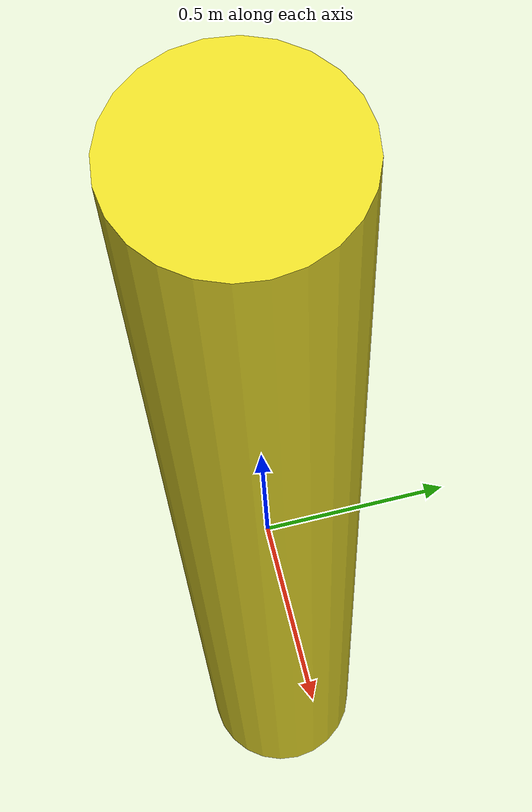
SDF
<?xml version='1.0'?>
<sdf version='1.6'>
  <model name='pillar_s_yellow'>
    <link name='link'>
      <inertial>
        <mass>1000</mass>
        <pose frame=''>0 0 0 0 -0 0</pose>
      </inertial>
      <self_collide>0</self_collide>
      <enable_wind>0</enable_wind>
      <kinematic>0</kinematic>
      <pose frame=''>0 0 0 0 -0 0</pose>
      <gravity>1</gravity>
      <visual name='visual'>
        <geometry>
          <cylinder>
            <radius>0.25</radius>
            <length>3.5</length>
          </cylinder>
        </geometry>
        <material>
          <script>
            <name>Gazebo/Yellow</name>
            <uri>file://media/materials/scripts/gazebo.material</uri>
          </script>
          <shader type='pixel'>
            <normal_map>__default__</normal_map>
          </shader>
          <ambient>0.988 0.914 0.31 1</ambient>
        </material>
        <pose frame=''>0 0 0 0 -0 0</pose>
      </visual>
      <collision name='collision'>
        <laser_retro>0</laser_retro>
        <max_contacts>10</max_contacts>
        <pose frame=''>0 0 0 0 -0 0</pose>
        <geometry>
          <cylinder>
            <radius>0.25</radius>
            <length>3.5</length>
          </cylinder>
        </geometry>
      </collision>
    </link>
    <static>0</static>
    <allow_auto_disable>1</allow_auto_disable>
  </model>
</sdf>
